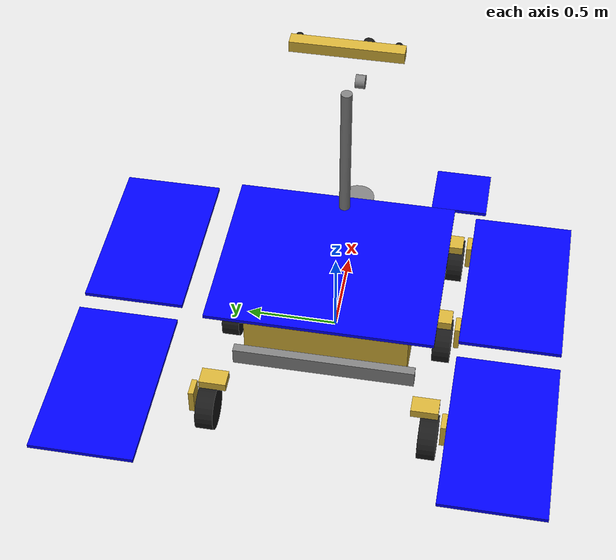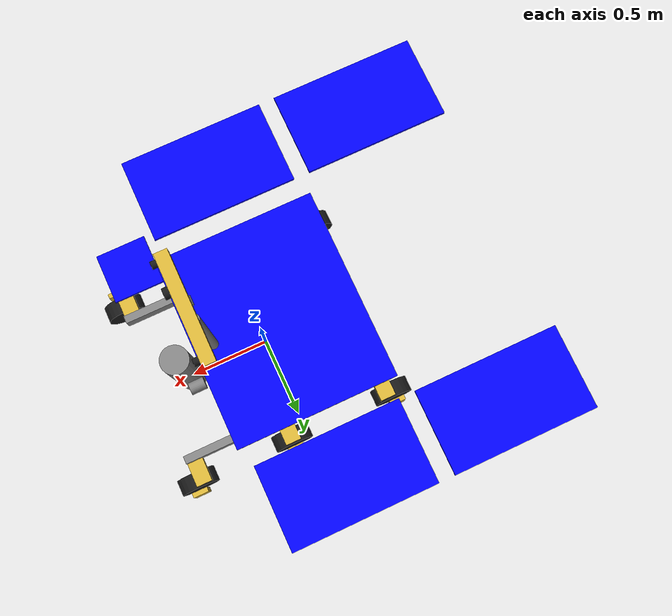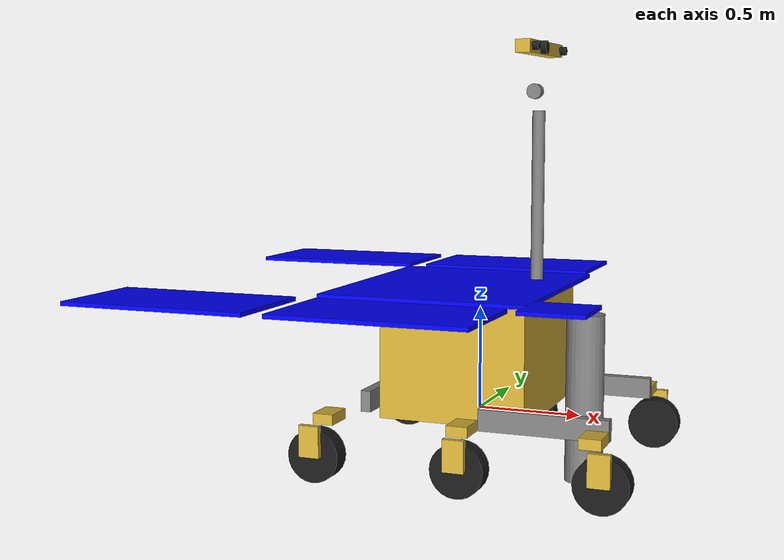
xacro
<?xml version="1.0"?>
<robot name="exomars" xmlns:xacro="http://www.ros.org/wiki/xacro">
  <!-- Constants for robot parameters -->
  <xacro:property name="base_mass" value="10.0" />
  <xacro:property name="mass" value="1.0" />
  <!-- Damping and friction for all joints -->
  <xacro:property name="damping" value="0.1" />
  <xacro:property name="friction" value="0.1" />

  <!-- Import all Gazebo-customization elements, including Gazebo colors and plugins -->
  <xacro:include filename="$(find exomars_description)/urdf/exomars.gazebo" />
  <!-- Import Rviz colors -->
  <xacro:include filename="$(find exomars_description)/urdf/materials.xacro" />

  <!-- Main body -->
  <link name="base_link">
    <collision>
      <origin xyz="0 0 0.3" rpy="0 0 0"/>
      <geometry>
        <box size="0.7 0.9 0.57"/>
      </geometry>
    </collision>
    <inertial>
       <mass value="${base_mass}"/>
        <inertia
            ixx="${base_mass / 12.0 * (0.9 * 0.9 + 0.57 * 0.57)}"
            iyy="${base_mass / 12.0 * (0.7 * 0.7 + 0.57 * 0.57)}"
            izz="${base_mass / 12.0 * (0.7 *0.7 + 0.9 * 0.9)}"
            ixy="0"
            ixz="0"
            iyz="0"/>
    </inertial>
    <visual>
      <origin xyz="0 0 0.3" rpy="0 0 0"/>
      <geometry>
        <box size="0.7 0.9 0.57"/>
      </geometry>
      <material name="gold"/>
    </visual>
  </link>

  <!-- Import subsystem xacro files -->
  <xacro:include filename="$(find exomars_description)/urdf/exomars_locomotion.xacro" />
  <xacro:include filename="$(find exomars_description)/urdf/exomars_power.xacro" />
  <xacro:include filename="$(find exomars_description)/urdf/exomars_sensor.xacro" />
  <xacro:include filename="$(find exomars_description)/urdf/exomars_drill.xacro" />
</robot>

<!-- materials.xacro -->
<robot>
  <!-- Colors used by Rviz -->
  <material name="wheel">
    <color rgba="0.1 0.1 0.1 1.0"/>
  </material>

  <material name="camera">
    <color rgba="0.1 0.1 0.1 1.0"/>
  </material>

  <material name="grey">
    <color rgba="0.5 0.5 0.5 1.0"/>
  </material>

  <material name="gold">
    <color rgba="${212/255} ${175/255} ${55/255} 1.0"/>
  </material>

  <material name="blue">
    <color rgba="0.0 0.0 1.0 1.0"/>
  </material>
</robot>

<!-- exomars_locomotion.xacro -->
<robot xmlns:xacro="http://www.ros.org/wiki/xacro">
  <xacro:property name="limit_drive_effort" value="1000" />
  <xacro:property name="limit_drive_velocity" value="1" />
  <xacro:property name="limit_bogie_effort" value="1000" />
  <xacro:property name="limit_bogie_lower" value="${-pi / 2}" />
  <xacro:property name="limit_bogie_upper" value="${pi / 2}" />
  <xacro:property name="limit_bogie_velocity" value="1" />
  <xacro:property name="limit_ww_effort" value="10000" />
  <xacro:property name="limit_ww_lower" value="0" />
  <xacro:property name="limit_ww_upper" value="${pi}" />
  <xacro:property name="limit_ww_velocity" value="1" />
  <xacro:property name="limit_steer_effort" value="1000" />
  <xacro:property name="limit_steer_lower" value="${-pi / 2}" />
  <xacro:property name="limit_steer_upper" value="${pi / 2}" />
  <xacro:property name="limit_steer_velocity" value="1" />

  <joint name="joint_bogie_back" type="revolute">
    <parent link="base_link"/>
    <child link="bogie_arm_back"/>
    <limit effort="${limit_bogie_effort}" lower="${limit_bogie_lower}" upper="${limit_bogie_upper}" velocity="${limit_bogie_velocity}"/>
    <origin xyz="-0.4 0 0.1" rpy="0 0 0"/>
    <axis xyz="1 0 0"/>
    <dynamics damping="${damping}" friction="${friction}"/>
  </joint>

  <link name="bogie_arm_back">
    <collision>
      <origin xyz="0 0 0" rpy="0 0 0"/>
      <geometry>
        <box size="0.05 1 0.1"/>
      </geometry>
    </collision>
    <inertial>
        <mass value="${mass}"/>
        <inertia
            ixx="${mass / 12.0 * (1 * 1 + 0.1 * 0.1)}"
            iyy="${mass / 12.0 * (0.05 * 0.05 + 0.1 * 0.1)}"
            izz="${mass / 12.0 * (0.05 * 0.05 + 1 * 1)}"
            ixy="0"
            ixz="0"
            iyz="0"/>
    </inertial>
    <visual>
      <origin xyz="0 0 0" rpy="0 0 0"/>
      <geometry>
        <box size="0.05 1 0.1"/>
      </geometry>
      <material name="grey"/>
    </visual>
  </link>

  <joint name="joint_ww_back_left" type="revolute">
    <parent link="bogie_arm_back"/>
    <child link="wrist_back_left"/>
    <limit effort="${limit_ww_effort}" lower="${limit_ww_lower}" upper="${limit_ww_upper}" velocity="${limit_ww_velocity}"/>
    <origin xyz="-0.15 0.48 -0.04" rpy="0 0 0"/>
    <axis xyz="0 -1 0"/>
    <dynamics damping="${damping}" friction="${friction}"/>
  </joint>

  <link name="wrist_back_left">
    <collision>
      <origin xyz="0 0.1 -0.025" rpy="0 0 0"/>
      <geometry>
        <box size="0.1 0.15 0.05"/>
      </geometry>
    </collision>
    <inertial>
        <mass value="${mass}"/>
        <inertia
            ixx="${mass / 12.0 * (0.15 * 0.15 + 0.05 * 0.05)}"
            iyy="${mass / 12.0 * (0.1 * 0.1 + 0.05 * 0.05)}"
            izz="${mass / 12.0 * (0.1 * 0.1 + 0.15 * 0.15)}"
            ixy="0"
            ixz="0"
            iyz="0"/>
    </inertial>
    <visual>
      <origin xyz="0 0.1 -0.025" rpy="0 0 0"/>
      <geometry>
        <box size="0.1 0.15 0.05"/>
      </geometry>
      <material name="gold"/>
    </visual>
  </link>

  <joint name="joint_steer_back_left" type="revolute">
    <parent link="wrist_back_left"/>
    <child link="finger_back_left"/>
    <limit effort="${limit_steer_effort}" lower="${limit_steer_lower}" upper="${limit_steer_upper}" velocity="${limit_steer_velocity}"/>
    <origin xyz="-0.05 0.13 -0.025" rpy="0 0 0"/>
    <axis xyz="0 0 1"/>
    <dynamics damping="${damping}" friction="${friction}"/>
  </joint>

  <link name="finger_back_left">
    <collision>
      <origin xyz="0 0.08 -0.1" rpy="0 0 0"/>
      <geometry>
        <box size="0.1 0.03 0.15"/>
      </geometry>
    </collision>
    <inertial>
        <mass value="${mass}"/>
        <inertia
            ixx="${mass / 12.0 * (0.03 * 0.03 + 0.15 * 0.15)}"
            iyy="${mass / 12.0 * (0.1 * 0.1 + 0.15 * 0.15)}"
            izz="${mass / 12.0 * (0.1 * 0.1 + 0.03 * 0.03)}"
            ixy="0"
            ixz="0"
            iyz="0"/>
    </inertial>
    <visual>
      <origin xyz="0 0.08 -0.1" rpy="0 0 0"/>
      <geometry>
        <box size="0.1 0.03 0.15"/>
      </geometry>
      <material name="gold"/>
    </visual>
  </link>

  <joint name="joint_drive_back_left" type="continuous">
    <parent link="finger_back_left"/>
    <child link="wheel_back_left"/>
    <limit effort="${limit_drive_effort}" velocity="${limit_drive_velocity}"/>
    <origin xyz="0 0 -0.18" rpy="0 0 0"/>
    <axis xyz="0 1 0"/>
    <dynamics damping="${damping}" friction="${friction}"/>
  </joint>
  <link name="wheel_back_left">
    <collision>
      <origin xyz="0 0 0" rpy="1.57 0 0"/>
      <geometry>
        <cylinder length="0.1" radius="0.125"/>
      </geometry>
    </collision>
    <inertial>
        <mass value="${mass}"/>
        <inertia
            ixx="${mass / 12.0 * (3 * 0.125 * 0.125 + 0.1 * 0.1)}"
            iyy="${mass / 12.0 * (3 * 0.125 * 0.125 + 0.1 * 0.1)}"
            izz="${mass / 2.0 * 0.125 * 0.125}"
            ixy="0"
            ixz="0"
            iyz="0"/>
    </inertial>
    <visual>
      <origin xyz="0 0 0" rpy="1.57 0 0"/>
      <geometry>
        <cylinder length="0.1" radius="0.125"/>
      </geometry>
      <material name="wheel"/>
    </visual>
  </link>

  <joint name="joint_ww_back_right" type="revolute">
    <parent link="bogie_arm_back"/>
    <child link="wrist_back_right"/>
    <limit effort="${limit_ww_effort}" lower="${limit_ww_lower}" upper="${limit_ww_upper}" velocity="${limit_ww_velocity}"/>
    <origin xyz="-0.15 -0.48 -0.04" rpy="0 0 0"/>
    <axis xyz="0 -1 0"/>
    <dynamics damping="${damping}" friction="${friction}"/>
  </joint>

  <link name="wrist_back_right">
    <collision>
      <origin xyz="0 -0.1 -0.025" rpy="0 0 0"/>
      <geometry>
        <box size="0.1 0.15 0.05"/>
      </geometry>
    </collision>
    <inertial>
        <mass value="${mass}"/>
        <inertia
            ixx="${mass / 12.0 * (3 * 0.125 * 0.125 + 0.1 * 0.1)}"
            iyy="${mass / 12.0 * (3 * 0.125 * 0.125 + 0.1 * 0.1)}"
            izz="${mass / 2.0 * 0.125 * 0.125}"
            ixy="0"
            ixz="0"
            iyz="0"/>
    </inertial>
    <visual>
      <origin xyz="0 -0.1 -0.025" rpy="0 0 0"/>
      <geometry>
        <box size="0.1 0.15 0.05"/>
      </geometry>
      <material name="gold"/>
    </visual>
  </link>

  <joint name="joint_steer_back_right" type="revolute">
    <parent link="wrist_back_right"/>
    <child link="finger_back_right"/>
    <limit effort="${limit_steer_effort}" lower="${limit_steer_lower}" upper="${limit_steer_upper}" velocity="${limit_steer_velocity}"/>
    <origin xyz="-0.05 -0.13 -0.025" rpy="0 0 0"/>
    <axis xyz="0 0 1"/>
    <dynamics damping="${damping}" friction="${friction}"/>
  </joint>

  <link name="finger_back_right">
    <collision>
      <origin xyz="0 -0.08 -0.1" rpy="0 0 0"/>
      <geometry>
        <box size="0.1 0.03 0.15"/>
      </geometry>
    </collision>
    <inertial>
        <mass value="${mass}"/>
        <inertia
            ixx="${mass / 12.0 * (0.03 * 0.03 + 0.15 * 0.15)}"
            iyy="${mass / 12.0 * (0.1 * 0.1 + 0.15 * 0.15)}"
            izz="${mass / 12.0 * (0.1 * 0.1 + 0.03 * 0.03)}"
            ixy="0"
            ixz="0"
            iyz="0"/>
    </inertial>
    <visual>
      <origin xyz="0 -0.08 -0.1" rpy="0 0 0"/>
      <geometry>
        <box size="0.1 0.03 0.15"/>
      </geometry>
      <material name="gold"/>
    </visual>
  </link>

  <joint name="joint_drive_back_right" type="continuous">
    <parent link="finger_back_right"/>
    <child link="wheel_back_right"/>
    <limit effort="${limit_drive_effort}" velocity="${limit_drive_velocity}"/>
    <origin xyz="0 0 -0.18" rpy="0 0 0"/>
    <axis xyz="0 1 0"/>
    <dynamics damping="${damping}" friction="${friction}"/>
  </joint>
  <link name="wheel_back_right">
    <collision>
      <origin xyz="0 0 0" rpy="1.57 0 0"/>
      <geometry>
        <cylinder length="0.1" radius="0.125"/>
      </geometry>
    </collision>
    <inertial>
        <mass value="${mass}"/>
        <inertia
            ixx="${mass / 12.0 * (3 * 0.125 * 0.125 + 0.1 * 0.1)}"
            iyy="${mass / 12.0 * (3 * 0.125 * 0.125 + 0.1 * 0.1)}"
            izz="${mass / 2.0 * 0.125 * 0.125}"
            ixy="0"
            ixz="0"
            iyz="0"/>
    </inertial>
    <visual>
      <origin xyz="0 0 0" rpy="1.57 0 0"/>
      <geometry>
        <cylinder length="0.1" radius="0.125"/>
      </geometry>
      <material name="wheel"/>
    </visual>
  </link>

  <joint name="joint_bogie_left" type="revolute">
    <parent link="base_link"/>
    <child link="bogie_arm_left"/>
    <limit effort="${limit_bogie_effort}" lower="${limit_bogie_lower}" upper="${limit_bogie_upper}" velocity="${limit_bogie_velocity}"/>
    <origin xyz="0.4 0.48 0.06" rpy="0 0 0"/>
    <axis xyz="0 1 0"/>
    <dynamics damping="${damping}" friction="${friction}"/>
  </joint>

  <link name="bogie_arm_left">
    <collision>
      <origin xyz="0.05 0 0" rpy="0 0 0"/>
      <geometry>
        <box size="0.6 0.05 0.1"/>
      </geometry>
    </collision>
    <inertial>
        <mass value="${mass}"/>
        <inertia
            ixx="${mass / 12.0 * (0.05 * 0.05 + 0.1 * 0.1)}"
            iyy="${mass / 12.0 * (0.6 * 0.6 + 0.1 * 0.1)}"
            izz="${mass / 12.0 * (0.05 * 0.05 + 0.6 * 0.6)}"
            ixy="0"
            ixz="0"
            iyz="0"/>
    </inertial>
    <visual>
      <origin xyz="0.05 0 0" rpy="0 0 0"/>
      <geometry>
        <box size="0.6 0.05 0.1"/>
      </geometry>
      <material name="grey"/>
    </visual>
  </link>

  <joint name="joint_ww_center_left" type="revolute">
    <parent link="bogie_arm_left"/>
    <child link="wrist_center_left"/>
    <limit effort="${limit_ww_effort}" lower="${limit_ww_lower}" upper="${limit_ww_upper}" velocity="${limit_ww_velocity}"/>
    <origin xyz="-0.2 0 0" rpy="0 0 0"/>
    <axis xyz="0 1 0"/>
    <dynamics damping="${damping}" friction="${friction}"/>
  </joint>

  <link name="wrist_center_left">
    <collision>
      <origin xyz="-0.1 0.1 -0.025" rpy="0 0 0"/>
      <geometry>
        <box size="0.1 0.15 0.05"/>
      </geometry>
    </collision>
    <inertial>
        <mass value="${mass}"/>
        <inertia
            ixx="${mass / 12.0 * (0.15 * 0.15 + 0.05 * 0.05)}"
            iyy="${mass / 12.0 * (0.1 * 0.1 + 0.05 * 0.05)}"
            izz="${mass / 12.0 * (0.1 * 0.1 + 0.15 * 0.15)}"
            ixy="0"
            ixz="0"
            iyz="0"/>
    </inertial>
    <visual>
      <origin xyz="-0.1 0.1 -0.025" rpy="0 0 0"/>
      <geometry>
        <box size="0.1 0.15 0.05"/>
      </geometry>
      <material name="gold"/>
    </visual>
  </link>

  <joint name="joint_steer_center_left" type="revolute">
    <parent link="wrist_center_left"/>
    <child link="finger_center_left"/>
    <limit effort="${limit_steer_effort}" lower="${limit_steer_lower}" upper="${limit_steer_upper}" velocity="${limit_steer_velocity}"/>
    <origin xyz="-0.1 0.13 -0.025" rpy="0 0 0"/>
    <axis xyz="0 0 1"/>
    <dynamics damping="${damping}" friction="${friction}"/>
  </joint>

  <link name="finger_center_left">
    <collision>
      <origin xyz="0 0.08 -0.1" rpy="0 0 0"/>
      <geometry>
        <box size="0.1 0.03 0.15"/>
      </geometry>
    </collision>
    <inertial>
        <mass value="${mass}"/>
        <inertia
            ixx="${mass / 12.0 * (0.03 * 0.03 + 0.15 * 0.15)}"
            iyy="${mass / 12.0 * (0.1 * 0.1 + 0.15 * 0.15)}"
            izz="${mass / 12.0 * (0.1 * 0.1 + 0.03 * 0.03)}"
            ixy="0"
            ixz="0"
            iyz="0"/>
    </inertial>
    <visual>
      <origin xyz="0 0.08 -0.1" rpy="0 0 0"/>
      <geometry>
        <box size="0.1 0.03 0.15"/>
      </geometry>
      <material name="gold"/>
    </visual>
  </link>

  <joint name="joint_drive_center_left" type="continuous">
    <parent link="finger_center_left"/>
    <child link="wheel_center_left"/>
    <limit effort="${limit_drive_effort}" velocity="${limit_drive_velocity}"/>
    <origin xyz="0 0 -0.18" rpy="0 0 0"/>
    <axis xyz="0 1 0"/>
    <dynamics damping="${damping}" friction="${friction}"/>
  </joint>

  <link name="wheel_center_left">
    <collision>
      <origin xyz="0 0 0" rpy="1.57 0 0"/>
      <geometry>
        <cylinder length="0.1" radius="0.125"/>
      </geometry>
    </collision>
    <inertial>
        <mass value="${mass}"/>
        <inertia
            ixx="${mass / 12.0 * (3 * 0.125 * 0.125 + 0.1 * 0.1)}"
            iyy="${mass / 12.0 * (3 * 0.125 * 0.125 + 0.1 * 0.1)}"
            izz="${mass / 2.0 * 0.125 * 0.125}"
            ixy="0"
            ixz="0"
            iyz="0"/>
    </inertial>
    <visual>
      <origin xyz="0 0 0" rpy="1.57 0 0"/>
      <geometry>
        <cylinder length="0.1" radius="0.125"/>
      </geometry>
      <material name="wheel"/>
    </visual>
  </link>

  <joint name="joint_ww_front_left" type="revolute">
    <parent link="bogie_arm_left"/>
    <child link="wrist_front_left"/>
    <limit effort="${limit_ww_effort}" lower="${limit_ww_lower}" upper="${limit_ww_upper}" velocity="${limit_ww_velocity}"/>
    <origin xyz="0.3 0 0" rpy="0 0 0"/>
    <axis xyz="0 1 0"/>
    <dynamics damping="${damping}" friction="${friction}"/>
  </joint>

  <link name="wrist_front_left">
    <collision>
      <origin xyz="0 0.1 -0.025" rpy="0 0 0"/>
      <geometry>
        <box size="0.1 0.15 0.05"/>
      </geometry>
    </collision>
    <inertial>
        <mass value="${mass}"/>
        <inertia
            ixx="${mass / 12.0 * (0.15 * 0.15 + 0.05 * 0.05)}"
            iyy="${mass / 12.0 * (0.1 * 0.1 + 0.05 * 0.05)}"
            izz="${mass / 12.0 * (0.1 * 0.1 + 0.15 * 0.15)}"
            ixy="0"
            ixz="0"
            iyz="0"/>
    </inertial>
    <visual>
      <origin xyz="0 0.1 -0.025" rpy="0 0 0"/>
      <geometry>
        <box size="0.1 0.15 0.05"/>
      </geometry>
      <material name="gold"/>
    </visual>
  </link>

  <joint name="joint_steer_front_left" type="revolute">
    <parent link="wrist_front_left"/>
    <child link="finger_front_left"/>
    <limit effort="${limit_steer_effort}" lower="${limit_steer_lower}" upper="${limit_steer_upper}" velocity="${limit_steer_velocity}"/>
    <origin xyz="0.05 0.13 -0.025" rpy="0 0 0"/>
    <axis xyz="0 0 1"/>
    <dynamics damping="${damping}" friction="${friction}"/>
  </joint>

  <link name="finger_front_left">
    <collision>
      <origin xyz="0 0.08 -0.1" rpy="0 0 0"/>
      <geometry>
        <box size="0.1 0.03 0.15"/>
      </geometry>
    </collision>
    <inertial>
        <mass value="${mass}"/>
        <inertia
            ixx="${mass / 12.0 * (0.03 * 0.03 + 0.15 * 0.15)}"
            iyy="${mass / 12.0 * (0.1 * 0.1 + 0.15 * 0.15)}"
            izz="${mass / 12.0 * (0.1 * 0.1 + 0.03 * 0.03)}"
            ixy="0"
            ixz="0"
            iyz="0"/>
    </inertial>
    <visual>
      <origin xyz="0 0.08 -0.1" rpy="0 0 0"/>
      <geometry>
        <box size="0.1 0.03 0.15"/>
      </geometry>
      <material name="gold"/>
    </visual>
  </link>

  <joint name="joint_drive_front_left" type="continuous">
    <parent link="finger_front_left"/>
    <child link="wheel_front_left"/>
    <limit effort="${limit_drive_effort}" velocity="${limit_drive_velocity}"/>
    <origin xyz="0 0 -0.18" rpy="0 0 0"/>
    <axis xyz="0 1 0"/>
    <dynamics damping="${damping}" friction="${friction}"/>
  </joint>
  <link name="wheel_front_left">
    <collision>
      <origin xyz="0 0 0" rpy="1.57 0 0"/>
      <geometry>
        <cylinder length="0.1" radius="0.125"/>
      </geometry>
    </collision>
    <inertial>
        <mass value="${mass}"/>
        <inertia
            ixx="${mass / 12.0 * (3 * 0.125 * 0.125 + 0.1 * 0.1)}"
            iyy="${mass / 12.0 * (3 * 0.125 * 0.125 + 0.1 * 0.1)}"
            izz="${mass / 2.0 * 0.125 * 0.125}"
            ixy="0"
            ixz="0"
            iyz="0"/>
    </inertial>
    <visual>
      <origin xyz="0 0 0" rpy="1.57 0 0"/>
      <geometry>
        <cylinder length="0.1" radius="0.125"/>
      </geometry>
      <material name="wheel"/>
    </visual>
  </link>

  <joint name="joint_bogie_right" type="revolute">
    <parent link="base_link"/>
    <child link="bogie_arm_right"/>
    <limit effort="1000.0" lower="${pi*(-1)}" upper="${pi}" velocity="1"/>
    <origin xyz="0.4 -0.48 0.06" rpy="0 0 0"/>
    <axis xyz="0 1 0"/>
    <dynamics damping="${damping}" friction="${friction}"/>
  </joint>

  <link name="bogie_arm_right">
    <collision>
      <origin xyz="0.05 0 0" rpy="0 0 0"/>
      <geometry>
        <box size="0.6 0.05 0.1"/>
      </geometry>
    </collision>
    <inertial>
        <mass value="${mass}"/>
        <inertia
            ixx="${mass / 12.0 * (0.05 * 0.05 + 0.1 * 0.1)}"
            iyy="${mass / 12.0 * (0.6 * 0.6 + 0.1 * 0.1)}"
            izz="${mass / 12.0 * (0.05 * 0.05 + 0.6 * 0.6)}"
            ixy="0"
            ixz="0"
            iyz="0"/>
    </inertial>
    <visual>
      <origin xyz="0.05 0 0" rpy="0 0 0"/>
      <geometry>
        <box size="0.6 0.05 0.1"/>
      </geometry>
      <material name="grey"/>
    </visual>
  </link>

  <joint name="joint_ww_center_right" type="revolute">
    <parent link="bogie_arm_right"/>
    <child link="wrist_center_right"/>
    <limit effort="${limit_ww_effort}" lower="${limit_ww_lower}" upper="${limit_ww_upper}" velocity="${limit_ww_velocity}"/>
    <origin xyz="-0.2 0 0" rpy="0 0 0"/>
    <axis xyz="0 1 0"/>
    <dynamics damping="${damping}" friction="${friction}"/>
  </joint>

  <link name="wrist_center_right">
    <collision>
      <origin xyz="-0.1 -0.1 -0.025" rpy="0 0 0"/>
      <geometry>
        <box size="0.1 0.15 0.05"/>
      </geometry>
    </collision>
    <inertial>
        <mass value="${mass}"/>
        <inertia
            ixx="${mass / 12.0 * (0.15 * 0.15 + 0.05 * 0.05)}"
            iyy="${mass / 12.0 * (0.1 * 0.1 + 0.05 * 0.05)}"
            izz="${mass / 12.0 * (0.1 * 0.1 + 0.15 * 0.15)}"
            ixy="0"
            ixz="0"
            iyz="0"/>
    </inertial>
    <visual>
      <origin xyz="-0.1 -0.1 -0.025" rpy="0 0 0"/>
      <geometry>
        <box size="0.1 0.15 0.05"/>
      </geometry>
      <material name="gold"/>
    </visual>
  </link>

  <joint name="joint_steer_center_right" type="revolute">
    <parent link="wrist_center_right"/>
    <child link="finger_center_right"/>
    <limit effort="${limit_steer_effort}" lower="${limit_steer_lower}" upper="${limit_steer_upper}" velocity="${limit_steer_velocity}"/>
    <origin xyz="-0.1 -0.13 -0.025" rpy="0 0 0"/>
    <axis xyz="0 0 1"/>
    <dynamics damping="${damping}" friction="${friction}"/>
  </joint>

  <link name="finger_center_right">
    <collision>
      <origin xyz="0 -0.08 -0.1" rpy="0 0 0"/>
      <geometry>
        <box size="0.1 0.03 0.15"/>
      </geometry>
    </collision>
    <inertial>
        <mass value="${mass}"/>
        <inertia
            ixx="${mass / 12.0 * (0.03 * 0.03 + 0.15 * 0.15)}"
            iyy="${mass / 12.0 * (0.1 * 0.1 + 0.15 * 0.15)}"
            izz="${mass / 12.0 * (0.1 * 0.1 + 0.03 * 0.03)}"
            ixy="0"
            ixz="0"
            iyz="0"/>
    </inertial>
    <visual>
      <origin xyz="0 -0.08 -0.1" rpy="0 0 0"/>
      <geometry>
        <box size="0.1 0.03 0.15"/>
      </geometry>
      <material name="gold"/>
    </visual>
  </link>

  <joint name="joint_drive_center_right" type="continuous">
    <parent link="finger_center_right"/>
    <child link="wheel_center_right"/>
    <limit effort="${limit_drive_effort}" velocity="${limit_drive_velocity}"/>
    <origin xyz="0 0 -0.18" rpy="0 0 0"/>
    <axis xyz="0 1 0"/>
    <dynamics damping="${damping}" friction="${friction}"/>
  </joint>
  <link name="wheel_center_right">
    <collision>
      <origin xyz="0 0 0" rpy="1.57 0 0"/>
      <geometry>
        <cylinder length="0.1" radius="0.125"/>
      </geometry>
    </collision>
    <inertial>
        <mass value="${mass}"/>
        <inertia
            ixx="${mass / 12.0 * (3 * 0.125 * 0.125 + 0.1 * 0.1)}"
            iyy="${mass / 12.0 * (3 * 0.125 * 0.125 + 0.1 * 0.1)}"
            izz="${mass / 2.0 * 0.125 * 0.125}"
            ixy="0"
            ixz="0"
            iyz="0"/>
    </inertial>
    <visual>
      <origin xyz="0 0 0" rpy="1.57 0 0"/>
      <geometry>
        <cylinder length="0.1" radius="0.125"/>
      </geometry>
      <material name="wheel"/>
    </visual>
  </link>

  <joint name="joint_ww_front_right" type="revolute">
    <parent link="bogie_arm_right"/>
    <child link="wrist_front_right"/>
    <limit effort="${limit_ww_effort}" lower="${limit_ww_lower}" upper="${limit_ww_upper}" velocity="${limit_ww_velocity}"/>
    <origin xyz="0.3 0 0" rpy="0 0 0"/>
    <axis xyz="0 1 0"/>
    <dynamics damping="${damping}" friction="${friction}"/>
  </joint>

  <link name="wrist_front_right">
    <collision>
      <origin xyz="0 -0.1 -0.025" rpy="0 0 0"/>
      <geometry>
        <box size="0.1 0.15 0.05"/>
      </geometry>
    </collision>
    <inertial>
        <mass value="${mass}"/>
        <inertia
            ixx="${mass / 12.0 * (0.15 * 0.15 + 0.05 * 0.05)}"
            iyy="${mass / 12.0 * (0.1 * 0.1 + 0.05 * 0.05)}"
            izz="${mass / 12.0 * (0.1 * 0.1 + 0.15 * 0.15)}"
            ixy="0"
            ixz="0"
            iyz="0"/>
    </inertial>
    <visual>
      <origin xyz="0 -0.1 -0.025" rpy="0 0 0"/>
      <geometry>
        <box size="0.1 0.15 0.05"/>
      </geometry>
      <material name="gold"/>
    </visual>
  </link>

  <joint name="joint_steer_front_right" type="revolute">
    <parent link="wrist_front_right"/>
    <child link="finger_front_right"/>
    <limit effort="${limit_steer_effort}" lower="${limit_steer_lower}" upper="${limit_steer_upper}" velocity="${limit_steer_velocity}"/>
    <origin xyz="0.05 -0.13 -0.025" rpy="0 0 0"/>
    <axis xyz="0 0 1"/>
    <dynamics damping="${damping}" friction="${friction}"/>
  </joint>

  <link name="finger_front_right">
    <collision>
      <origin xyz="0 -0.08 -0.1" rpy="0 0 0"/>
      <geometry>
        <box size="0.1 0.03 0.15"/>
      </geometry>
    </collision>
    <inertial>
        <mass value="${mass}"/>
        <inertia
            ixx="${mass / 12.0 * (0.03 * 0.03 + 0.15 * 0.15)}"
            iyy="${mass / 12.0 * (0.1 * 0.1 + 0.15 * 0.15)}"
            izz="${mass / 12.0 * (0.1 * 0.1 + 0.03 * 0.03)}"
            ixy="0"
            ixz="0"
            iyz="0"/>
    </inertial>
    <visual>
      <origin xyz="0 -0.08 -0.1" rpy="0 0 0"/>
      <geometry>
        <box size="0.1 0.03 0.15"/>
      </geometry>
      <material name="gold"/>
    </visual>
  </link>

  <joint name="joint_drive_front_right" type="continuous">
    <parent link="finger_front_right"/>
    <child link="wheel_front_right"/>
    <limit effort="${limit_drive_effort}" velocity="${limit_drive_velocity}"/>
    <origin xyz="0 0 -0.18" rpy="0 0 0"/>
    <axis xyz="0 1 0"/>
    <dynamics damping="${damping}" friction="${friction}"/>
  </joint>

  <link name="wheel_front_right">
    <collision>
      <origin xyz="0 0 0" rpy="1.57 0 0"/>
      <geometry>
        <cylinder length="0.1" radius="0.125"/>
      </geometry>
    </collision>
    <inertial>
        <mass value="${mass}"/>
        <inertia
            ixx="${mass / 12.0 * (3 * 0.125 * 0.125 + 0.1 * 0.1)}"
            iyy="${mass / 12.0 * (3 * 0.125 * 0.125 + 0.1 * 0.1)}"
            izz="${mass / 2.0 * 0.125 * 0.125}"
            ixy="0"
            ixz="0"
            iyz="0"/>
    </inertial>
    <visual>
      <origin xyz="0 0 0" rpy="1.57 0 0"/>
      <geometry>
        <cylinder length="0.1" radius="0.125"/>
      </geometry>
      <material name="wheel"/>
    </visual>
  </link>
  <transmission name="transmission_bogie_right">
    <type>transmission_interface/SimpleTransmission</type>
    <joint name="joint_bogie_right">
      <hardwareInterface>hardware_interface/EffortJointInterface</hardwareInterface>
    </joint>
    <actuator name="motor_bogie_right">
      <mechanicalReduction>1</mechanicalReduction>
    </actuator>
  </transmission>

  <transmission name="transmission_bogie_left">
    <type>transmission_interface/SimpleTransmission</type>
    <joint name="joint_bogie_left">
      <hardwareInterface>hardware_interface/EffortJointInterface</hardwareInterface>
    </joint>
    <actuator name="motor_bogie_left">
      <mechanicalReduction>1</mechanicalReduction>
    </actuator>
  </transmission>

  <transmission name="transmission_bogie_back">
    <type>transmission_interface/SimpleTransmission</type>
    <joint name="joint_bogie_back">
      <hardwareInterface>hardware_interface/EffortJointInterface</hardwareInterface>
    </joint>
    <actuator name="motor_bogie_back">
      <mechanicalReduction>1</mechanicalReduction>
    </actuator>
  </transmission>

  <transmission name="transmission_steer_back_left">
    <type>transmission_interface/SimpleTransmission</type>
    <joint name="joint_steer_back_left">
      <hardwareInterface>hardware_interface/EffortJointInterface</hardwareInterface>
    </joint>
    <actuator name="motor_steer_back_left">
      <mechanicalReduction>1</mechanicalReduction>
    </actuator>
  </transmission>

  <transmission name="transmission_steer_back_right">
    <type>transmission_interface/SimpleTransmission</type>
    <joint name="joint_steer_back_right">
      <hardwareInterface>hardware_interface/EffortJointInterface</hardwareInterface>
    </joint>
    <actuator name="motor_steer_back_right">
      <mechanicalReduction>1</mechanicalReduction>
    </actuator>
  </transmission>

  <transmission name="transmission_steer_center_left">
    <type>transmission_interface/SimpleTransmission</type>
    <joint name="joint_steer_center_left">
      <hardwareInterface>hardware_interface/EffortJointInterface</hardwareInterface>
    </joint>
    <actuator name="motor_steer_center_left">
      <mechanicalReduction>1</mechanicalReduction>
    </actuator>
  </transmission>

  <transmission name="transmission_steer_center_right">
    <type>transmission_interface/SimpleTransmission</type>
    <joint name="joint_steer_center_right">
      <hardwareInterface>hardware_interface/EffortJointInterface</hardwareInterface>
    </joint>
    <actuator name="motor_steer_center_right">
      <mechanicalReduction>1</mechanicalReduction>
    </actuator>
  </transmission>

  <transmission name="transmission_steer_front_left">
    <type>transmission_interface/SimpleTransmission</type>
    <joint name="joint_steer_front_left">
      <hardwareInterface>hardware_interface/EffortJointInterface</hardwareInterface>
    </joint>
    <actuator name="motor_steer_front_left">
      <mechanicalReduction>1</mechanicalReduction>
    </actuator>
  </transmission>

  <transmission name="transmission_steer_front_right">
    <type>transmission_interface/SimpleTransmission</type>
    <joint name="joint_steer_front_right">
      <hardwareInterface>hardware_interface/EffortJointInterface</hardwareInterface>
    </joint>
    <actuator name="motor_steer_front_right">
      <mechanicalReduction>1</mechanicalReduction>
    </actuator>
  </transmission>

  <transmission name="transmission_drive_back_left">
    <type>transmission_interface/SimpleTransmission</type>
    <joint name="joint_drive_back_left">
      <hardwareInterface>hardware_interface/EffortJointInterface</hardwareInterface>
    </joint>
    <actuator name="motor_drive_back_left">
      <mechanicalReduction>1</mechanicalReduction>
    </actuator>
  </transmission>

  <transmission name="transmission_drive_back_right">
    <type>transmission_interface/SimpleTransmission</type>
    <joint name="joint_drive_back_right">
      <hardwareInterface>hardware_interface/EffortJointInterface</hardwareInterface>
    </joint>
    <actuator name="motor_drive_back_right">
      <mechanicalReduction>1</mechanicalReduction>
    </actuator>
  </transmission>

  <transmission name="transmission_drive_center_left">
    <type>transmission_interface/SimpleTransmission</type>
    <joint name="joint_drive_center_left">
      <hardwareInterface>hardware_interface/EffortJointInterface</hardwareInterface>
    </joint>
    <actuator name="motor_drive_center_left">
      <mechanicalReduction>1</mechanicalReduction>
    </actuator>
  </transmission>

  <transmission name="transmission_drive_center_right">
    <type>transmission_interface/SimpleTransmission</type>
    <joint name="joint_drive_center_right">
      <hardwareInterface>hardware_interface/EffortJointInterface</hardwareInterface>
    </joint>
    <actuator name="motor_drive_center_right">
      <mechanicalReduction>1</mechanicalReduction>
    </actuator>
  </transmission>

  <transmission name="transmission_drive_front_left">
    <type>transmission_interface/SimpleTransmission</type>
    <joint name="joint_drive_front_left">
      <hardwareInterface>hardware_interface/EffortJointInterface</hardwareInterface>
    </joint>
    <actuator name="motor_drive_front_left">
      <mechanicalReduction>1</mechanicalReduction>
    </actuator>
  </transmission>

  <transmission name="transmission_drive_front_right">
    <type>transmission_interface/SimpleTransmission</type>
    <joint name="joint_drive_front_right">
      <hardwareInterface>hardware_interface/EffortJointInterface</hardwareInterface>
    </joint>
    <actuator name="motor_drive_front_right">
      <mechanicalReduction>1</mechanicalReduction>
    </actuator>
  </transmission>

  <transmission name="transmission_ww_back_left">
    <type>transmission_interface/SimpleTransmission</type>
    <joint name="joint_ww_back_left">
      <hardwareInterface>hardware_interface/EffortJointInterface</hardwareInterface>
    </joint>
    <actuator name="motor_ww_back_left">
      <mechanicalReduction>1</mechanicalReduction>
    </actuator>
  </transmission>

  <transmission name="transmission_ww_back_right">
    <type>transmission_interface/SimpleTransmission</type>
    <joint name="joint_ww_back_right">
      <hardwareInterface>hardware_interface/EffortJointInterface</hardwareInterface>
    </joint>
    <actuator name="motor_ww_back_right">
      <mechanicalReduction>1</mechanicalReduction>
    </actuator>
  </transmission>

  <transmission name="transmission_ww_center_left">
    <type>transmission_interface/SimpleTransmission</type>
    <joint name="joint_ww_center_left">
      <hardwareInterface>hardware_interface/EffortJointInterface</hardwareInterface>
    </joint>
    <actuator name="motor_ww_center_left">
      <mechanicalReduction>1</mechanicalReduction>
    </actuator>
  </transmission>

  <transmission name="transmission_ww_center_right">
    <type>transmission_interface/SimpleTransmission</type>
    <joint name="joint_ww_center_right">
      <hardwareInterface>hardware_interface/EffortJointInterface</hardwareInterface>
    </joint>
    <actuator name="motor_ww_center_right">
      <mechanicalReduction>1</mechanicalReduction>
    </actuator>
  </transmission>

  <transmission name="transmission_ww_front_left">
    <type>transmission_interface/SimpleTransmission</type>
    <joint name="joint_ww_front_left">
      <hardwareInterface>hardware_interface/EffortJointInterface</hardwareInterface>
    </joint>
    <actuator name="motor_ww_front_left">
      <mechanicalReduction>1</mechanicalReduction>
    </actuator>
  </transmission>

  <transmission name="transmission_ww_front_right">
    <type>transmission_interface/SimpleTransmission</type>
    <joint name="joint_ww_front_right">
      <hardwareInterface>hardware_interface/EffortJointInterface</hardwareInterface>
    </joint>
    <actuator name="motor_ww_front_right">
      <mechanicalReduction>1</mechanicalReduction>
    </actuator>
  </transmission>
</robot>

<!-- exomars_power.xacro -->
<robot>
  <joint name="joint_panel_top" type="fixed">
    <parent link="base_link"/>
    <child link="panel_top"/>
    <origin xyz="-0.1 0 0.6" rpy="0 0 0"/>
  </joint>

  <link name="panel_top">
    <collision>
      <origin xyz="0 0 0" rpy="0 0 0"/>
      <geometry>
        <box size="1 1.2 0.02"/>
      </geometry>
    </collision>
    <inertial>
        <mass value="${mass}"/>
        <inertia
            ixx="${mass / 12.0 * (1.2 * 1.2 + 0.02 * 0.02)}"
            iyy="${mass / 12.0 * (1 * 1 + 0.02 * 0.02)}"
            izz="${mass / 12.0 * (1.2 * 1.2 + 1 * 1)}"
            ixy="0"
            ixz="0"
            iyz="0"/>
    </inertial>
    <visual>
      <origin xyz="0 0 0" rpy="0 0 0"/>
      <geometry>
        <box size="1 1.2 0.02"/>
      </geometry>
      <material name="blue"/>
    </visual>
  </link>

  <joint name="joint_panel_front" type="fixed">
    <parent link="base_link"/>
    <child link="panel_front"/>
    <origin xyz="0.55 -0.62 0.6" rpy="0 0 0"/>
  </joint>

  <link name="panel_front">
    <collision>
      <origin xyz="0 0 0" rpy="0 0 0"/>
      <geometry>
        <box size="0.3 0.3 0.02"/>
      </geometry>
    </collision>
    <inertial>
        <mass value="${mass}"/>
        <inertia
            ixx="${mass / 12.0 * (1.2 * 1.2 + 0.02 * 0.02)}"
            iyy="${mass / 12.0 * (1 * 1 + 0.02 * 0.02)}"
            izz="${mass / 12.0 * (1.2 * 1.2 + 1 * 1)}"
            ixy="0"
            ixz="0"
            iyz="0"/>
    </inertial>
    <visual>
      <origin xyz="0 0 0" rpy="0 0 0"/>
      <geometry>
        <box size="0.3 0.3 0.02"/>
      </geometry>
      <material name="blue"/>
    </visual>
  </link>

  <joint name="joint_panel_center_right" type="revolute">
    <parent link="panel_top"/>
    <child link="panel_center_right"/>
    <limit effort="1000.0" lower="0" upper="${pi}" velocity="0.5"/>
    <origin xyz="0 -0.66 0.015" rpy="0 0 0"/>
    <axis xyz="-1 0 0"/>
    <dynamics damping="${damping}" friction="${friction}"/>
  </joint>

  <link name="panel_center_right">
    <collision>
      <origin xyz="0 -0.32 -0.015" rpy="0 0 0"/>
      <geometry>
        <box size="0.9 0.52 0.02"/>
      </geometry>
    </collision>
    <inertial>
        <mass value="${mass}"/>
        <inertia
            ixx="${mass / 12.0 * (0.52 * 0.52 + 0.02 * 0.02)}"
            iyy="${mass / 12.0 * (0.9 * 0.9 + 0.02 * 0.02)}"
            izz="${mass / 12.0 * (0.9 * 0.9 + 0.52 * 0.52)}"
            ixy="0"
            ixz="0"
            iyz="0"/>
    </inertial>
    <visual>
      <origin xyz="0 -0.32 -0.015" rpy="0 0 0"/>
      <geometry>
        <box size="0.9 0.52 0.02"/>
      </geometry>
      <material name="blue"/>
    </visual>
  </link>

  <joint name="joint_panel_back_right" type="revolute">
    <parent link="panel_center_right"/>
    <child link="panel_back_right"/>
    <limit effort="1000.0" lower="0" upper="${pi}" velocity="0.5"/>
    <origin xyz="-0.5 -0.32 -0.03" rpy="0 0 0"/>
    <axis xyz="0 -1 0"/>
    <dynamics damping="${damping}" friction="${friction}"/>
  </joint>

  <link name="panel_back_right">
    <collision>
      <origin xyz="-0.5 0 0.015" rpy="0 0 0"/>
      <geometry>
        <box size="0.9 0.52 0.02"/>
      </geometry>
    </collision>
    <inertial>
        <mass value="${mass}"/>
        <inertia
            ixx="${mass / 12.0 * (0.52 * 0.52 + 0.02 * 0.02)}"
            iyy="${mass / 12.0 * (0.9 * 0.9 + 0.02 * 0.02)}"
            izz="${mass / 12.0 * (0.9 * 0.9 + 0.52 * 0.52)}"
            ixy="0"
            ixz="0"
            iyz="0"/>
    </inertial>
    <visual>
      <origin xyz="-0.5 0 0.015" rpy="0 0 0"/>
      <geometry>
        <box size="0.9 0.52 0.02"/>
      </geometry>
      <material name="blue"/>
    </visual>
  </link>

  <joint name="joint_panel_center_left" type="revolute">
    <parent link="panel_top"/>
    <child link="panel_center_left"/>
    <limit effort="1000.0" lower="0" upper="${pi}" velocity="0.5"/>
    <origin xyz="0 0.66 0.015" rpy="0 0 0"/>
    <axis xyz="1 0 0"/>
    <dynamics damping="${damping}" friction="${friction}"/>
  </joint>

  <link name="panel_center_left">
    <collision>
      <origin xyz="0 0.32 -0.015" rpy="0 0 0"/>
      <geometry>
        <box size="0.9 0.52 0.02"/>
      </geometry>
    </collision>
    <inertial>
        <mass value="${mass}"/>
        <inertia
            ixx="${mass / 12.0 * (0.52 * 0.52 + 0.02 * 0.02)}"
            iyy="${mass / 12.0 * (0.9 * 0.9 + 0.02 * 0.02)}"
            izz="${mass / 12.0 * (0.9 * 0.9 + 0.52 * 0.52)}"
            ixy="0"
            ixz="0"
            iyz="0"/>
    </inertial>
    <visual>
      <origin xyz="0 0.32 -0.015" rpy="0 0 0"/>
      <geometry>
        <box size="0.9 0.52 0.02"/>
      </geometry>
      <material name="blue"/>
    </visual>
  </link>

  <joint name="joint_panel_back_left" type="revolute">
    <parent link="panel_center_left"/>
    <child link="panel_back_left"/>
    <limit effort="1000.0" lower="0" upper="${pi}" velocity="0.5"/>
    <origin xyz="-0.5 0.32 -0.03" rpy="0 0 0"/>
    <axis xyz="0 -1 0"/>
    <dynamics damping="${damping}" friction="${friction}"/>
  </joint>

  <link name="panel_back_left">
    <collision>
      <origin xyz="-0.5 0 0.015" rpy="0 0 0"/>
      <geometry>
        <box size="0.9 0.52 0.02"/>
      </geometry>
    </collision>
    <inertial>
        <mass value="${mass}"/>
        <inertia
            ixx="${mass / 12.0 * (0.52 * 0.52 + 0.02 * 0.02)}"
            iyy="${mass / 12.0 * (0.9 * 0.9 + 0.02 * 0.02)}"
            izz="${mass / 12.0 * (0.9 * 0.9 + 0.52 * 0.52)}"
            ixy="0"
            ixz="0"
            iyz="0"/>
    </inertial>
    <visual>
      <origin xyz="-0.5 0 0.015" rpy="0 0 0"/>
      <geometry>
        <box size="0.9 0.52 0.02"/>
      </geometry>
      <material name="blue"/>
    </visual>
  </link>

  <transmission name="transmission_panel_center_right">
    <type>transmission_interface/SimpleTransmission</type>
    <joint name="joint_panel_center_right">
      <hardwareInterface>hardware_interface/EffortJointInterface</hardwareInterface>
    </joint>
    <actuator name="motor_panel_center_right">
      <hardwareInterface>hardware_interface/EffortJointInterface</hardwareInterface>
      <mechanicalReduction>1</mechanicalReduction>
    </actuator>
  </transmission>

  <transmission name="transmission_panel_center_left">
    <type>transmission_interface/SimpleTransmission</type>
    <joint name="joint_panel_center_left">
      <hardwareInterface>hardware_interface/EffortJointInterface</hardwareInterface>
    </joint>
    <actuator name="motor_panel_center_left">
      <hardwareInterface>hardware_interface/EffortJointInterface</hardwareInterface>
      <mechanicalReduction>1</mechanicalReduction>
    </actuator>
  </transmission>

  <transmission name="transmission_panel_back_right">
    <type>transmission_interface/SimpleTransmission</type>
    <joint name="joint_panel_back_right">
      <hardwareInterface>hardware_interface/EffortJointInterface</hardwareInterface>
    </joint>
    <actuator name="motor_panel_back_right">
      <hardwareInterface>hardware_interface/EffortJointInterface</hardwareInterface>
      <mechanicalReduction>1</mechanicalReduction>
    </actuator>
  </transmission>

  <transmission name="transmission_panel_back_left">
    <type>transmission_interface/SimpleTransmission</type>
    <joint name="joint_panel_back_left">
      <hardwareInterface>hardware_interface/EffortJointInterface</hardwareInterface>
    </joint>
    <actuator name="motor_panel_back_left">
      <hardwareInterface>hardware_interface/EffortJointInterface</hardwareInterface>
      <mechanicalReduction>1</mechanicalReduction>
    </actuator>
  </transmission>
</robot>

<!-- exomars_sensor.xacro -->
<robot xmlns:xacro="http://www.ros.org/wiki/xacro">
  <xacro:property name="ptu_pan_limit" value="${170 * pi / 180}" />
  <xacro:property name="ptu_tilt_limit_upper" value="${pi / 2}" />
  <xacro:property name="ptu_tilt_limit_lower" value="${-pi / 2}" />

  <joint name="joint_ptu_deploy" type="revolute">
    <parent link="base_link"/>
    <child link="pamcam_mast"/>
    <limit effort="1000.0" lower="0" upper="${pi / 2}" velocity="0.5"/>
    <origin xyz="0.28 0 0.65" rpy="0 0 0"/>
    <axis xyz="0 -1 0"/>
    <dynamics damping="${damping}" friction="${friction}"/>
  </joint>

  <link name="pamcam_mast">
    <collision>
      <origin xyz="0 0 0.4" rpy="0 0 0"/>
      <geometry>
        <cylinder length="0.8" radius="0.03"/>
      </geometry>
    </collision>
    <inertial>
        <mass value="${mass}"/>
        <inertia
            ixx="${mass / 12.0 * (3 * 0.03 * 0.03 + 0.8 * 0.8)}"
            iyy="${mass / 12.0 * (3 * 0.03 * 0.03 + 0.8 * 0.8)}"
            izz="${mass / 2.0 * 0.03 * 0.03}"
            ixy="0"
            ixz="0"
            iyz="0"/>
    </inertial>
    <visual>
      <origin xyz="0 0 0.4" rpy="0 0 0"/>
      <geometry>
        <cylinder length="0.8" radius="0.03"/>
      </geometry>
      <material name="grey"/>
    </visual>
  </link>

  <joint name="joint_ptu_pan" type="revolute">
    <parent link="pamcam_mast"/>
    <child link="mast_tilt"/>
    <limit effort="1000.0" lower="${-ptu_pan_limit}" upper="${ptu_pan_limit}" velocity="0.5"/>
    <origin xyz="0 0 0.8" rpy="0 0 0"/>
    <axis xyz="0 0 1"/>
    <dynamics damping="${damping}" friction="${friction}"/>
  </joint>

  <link name="mast_tilt">
    <collision>
      <origin xyz="0 -0.07 0.09" rpy="0 0 0"/>
      <geometry>
        <cylinder length="0.05" radius="0.035"/>
      </geometry>
    </collision>
    <inertial>
        <mass value="${mass}"/>
        <inertia
            ixx="${mass / 12.0 * (3 * 0.035 * 0.035 + 0.05 * 0.05)}"
            iyy="${mass / 12.0 * (3 * 0.035 * 0.035 + 0.05 * 0.05)}"
            izz="${mass / 2.0 * 0.035 * 0.035}"
            ixy="0"
            ixz="0"
            iyz="0"/>
    </inertial>
    <visual>
      <origin xyz="0 -0.07 0.09" rpy="${pi / 2} 0 0"/>
      <geometry>
        <cylinder length="0.05" radius="0.035"/>
      </geometry>
      <material name="grey"/>
    </visual>
  </link>

  <joint name="joint_ptu_tilt" type="revolute">
    <parent link="mast_tilt"/>
    <child link="pancam_support"/>
    <limit effort="1000.0" lower="${ptu_tilt_limit_lower}" upper="${ptu_tilt_limit_upper}" velocity="0.5"/>
    <origin xyz="0 0 0.09" rpy="0 0 0"/>
    <axis xyz="0 1 0"/>
    <dynamics damping="${damping}" friction="${friction}"/>
  </joint>

  <link name="pancam_support">
    <collision>
      <origin xyz="0 0 0.2" rpy="0 0 0"/>
      <geometry>
        <box size="0.07 0.58 0.06"/>
      </geometry>
    </collision>
    <inertial>
       <mass value="${mass}"/>
        <inertia
            ixx="${mass / 12.0 * (0.58 * 0.58 + 0.06 * 0.06)}"
            iyy="${mass / 12.0 * (0.07 * 0.07 + 0.06 * 0.06)}"
            izz="${mass / 12.0 * (0.07 * 0.07 + 0.58 * 0.58)}"
            ixy="0"
            ixz="0"
            iyz="0"/>
    </inertial>
    <visual>
      <origin xyz="0 0 0.2" rpy="0 0 0"/>
      <geometry>
        <box size="0.07 0.58 0.06"/>
      </geometry>
      <material name="gold"/>
    </visual>
  </link>

  <joint name="camera_joint_left" type="fixed">
    <axis xyz="0 1 0" />
    <origin xyz="${0.035+0.01} 0.25 0.2" rpy="0 0 0"/>
    <parent link="pancam_support"/>
    <child link="pancam_frame_left"/>
  </joint>

  <link name="pancam_frame_left">
    <collision>
      <origin xyz="0 0 0" rpy="0 ${pi / 2} 0"/>
      <geometry>
        <cylinder length="0.04" radius="0.02"/>
      </geometry>
    </collision>
    <inertial>
        <mass value="0.01"/>
        <inertia
            ixx="${0.01 / 12.0 * (3 * 0.02 * 0.02 + 0.04 * 0.04)}"
            iyy="${0.01 / 12.0 * (3 * 0.02 * 0.02 + 0.04 * 0.04)}"
            izz="${0.01 / 2.0 * 0.02 * 0.02}"
            ixy="0"
            ixz="0"
            iyz="0"/>
    </inertial>
    <visual>
      <origin xyz="0 0 0" rpy="0 ${pi / 2} 0"/>
      <geometry>
        <cylinder length="0.04" radius="0.02"/>
      </geometry>
      <material name="camera"/>
    </visual>
  </link>

  <joint name="camera_joint_right" type="fixed">
    <axis xyz="0 1 0" />
    <origin xyz="${0.035+0.01} -0.25 0.2" rpy="0 0 0"/>
    <parent link="pancam_support"/>
    <child link="pancam_frame_right"/>
  </joint>

  <link name="pancam_frame_right">
    <collision>
      <origin xyz="0 0 0" rpy="0 ${pi / 2} 0"/>
      <geometry>
        <cylinder length="0.04" radius="0.02"/>
      </geometry>
    </collision>
    <inertial>
        <mass value="0.01"/>
        <inertia
            ixx="${0.01 / 12.0 * (3 * 0.02 * 0.02 + 0.04 * 0.04)}"
            iyy="${0.01 / 12.0 * (3 * 0.02 * 0.02 + 0.04 * 0.04)}"
            izz="${0.01 / 2.0 * 0.02 * 0.02}"
            ixy="0"
            ixz="0"
            iyz="0"/>
    </inertial>
    <visual>
      <origin xyz="0 0 0" rpy="0 ${pi / 2} 0"/>
      <geometry>
        <cylinder length="0.04" radius="0.02"/>
      </geometry>
      <material name="camera"/>
    </visual>
  </link>

  <joint name="camera_joint_hrc" type="fixed">
    <axis xyz="0 1 0" />
    <origin xyz="${0.035+0.01} -0.1 0.2" rpy="0 0 0"/>
    <parent link="pancam_support"/>
    <child link="pancam_frame_hrc"/>
  </joint>

  <link name="pancam_frame_hrc">
    <collision>
      <origin xyz="0 0 0" rpy="0 ${pi / 2} 0"/>
      <geometry>
        <cylinder length="0.04" radius="0.03"/>
      </geometry>
    </collision>
    <inertial>
        <mass value="0.01"/>
        <inertia
            ixx="${0.01 / 12.0 * (3 * 0.03 * 0.03 + 0.04 * 0.04)}"
            iyy="${0.01 / 12.0 * (3 * 0.03 * 0.03 + 0.04 * 0.04)}"
            izz="${0.01 / 2.0 * 0.03 * 0.03}"
            ixy="0"
            ixz="0"
            iyz="0"/>
    </inertial>
    <visual>
      <origin xyz="0 0 0" rpy="0 ${pi / 2} 0"/>
      <geometry>
        <cylinder length="0.04" radius="0.03"/>
      </geometry>
      <material name="camera"/>
    </visual>
  </link>

  <!-- Reference: https://www.liebertpub.com/doi/10.1089/ast.2016.1548 -->
  <gazebo reference="pancam_frame_left">
    <sensor type="multicamera" name="wide_angle_camera">
      <update_rate>30.0</update_rate>
      <camera name="left">
        <horizontal_fov>${38.3 * pi / 180}</horizontal_fov>
        <image>
          <width>1024</width>
          <height>1024</height>
          <format>R8G8B8</format>
        </image>
        <clip>
          <near>0.02</near>
          <far>300</far>
        </clip>
        <noise>
          <type>gaussian</type>
          <mean>0.0</mean>
          <stddev>0.007</stddev>
        </noise>
      </camera>
      <camera name="right">
        <pose>0 -0.5 0 0 0 0</pose>
        <horizontal_fov>${38.3 * pi / 180}</horizontal_fov>
        <image>
          <width>1024</width>
          <height>1024</height>
          <format>R8G8B8</format>
        </image>
        <clip>
          <near>0.02</near>
          <far>300</far>
        </clip>
        <noise>
          <type>gaussian</type>
          <mean>0.0</mean>
          <stddev>0.007</stddev>
        </noise>
      </camera>
      <plugin name="stereo_camera_controller" filename="libgazebo_ros_multicamera.so">
        <alwaysOn>true</alwaysOn>
        <updateRate>0.0</updateRate>
        <cameraName>wac</cameraName>
        <imageTopicName>image_raw</imageTopicName>
        <cameraInfoTopicName>camera_info</cameraInfoTopicName>
        <frameName>pancam_frame_left</frameName>
        <hackBaseline>0.07</hackBaseline>
        <distortionK1>0.0</distortionK1>
        <distortionK2>0.0</distortionK2>
        <distortionK3>0.0</distortionK3>
        <distortionT1>0.0</distortionT1>
        <distortionT2>0.0</distortionT2>
      </plugin>
    </sensor>
  </gazebo>

  <!-- High Resolution Camera (HRC) -->
  <gazebo reference="pancam_frame_hrc">
    <sensor type="camera" name="high_resolution_camera">
      <update_rate>30.0</update_rate>
      <camera name="head">
        <horizontal_fov>${4.88 * pi / 180}</horizontal_fov>
        <image>
          <width>1024</width>
          <height>1024</height>
          <format>R8G8B8</format>
        </image>
        <clip>
          <near>0.02</near>
          <far>300</far>
        </clip>
        <noise>
          <type>gaussian</type>
          <mean>0.0</mean>
          <stddev>0.007</stddev>
        </noise>
      </camera>
      <plugin name="camera_controller" filename="libgazebo_ros_camera.so">
        <alwaysOn>true</alwaysOn>
        <updateRate>0.0</updateRate>
        <cameraName>hrc</cameraName>
        <imageTopicName>image_raw</imageTopicName>
        <cameraInfoTopicName>camera_info</cameraInfoTopicName>
        <frameName>camera_link</frameName>
        <hackBaseline>0.07</hackBaseline>
        <distortionK1>0.0</distortionK1>
        <distortionK2>0.0</distortionK2>
        <distortionK3>0.0</distortionK3>
        <distortionT1>0.0</distortionT1>
        <distortionT2>0.0</distortionT2>
      </plugin>
    </sensor>
  </gazebo>

  <transmission name="transmission_ptu_deploy">
    <type>transmission_interface/SimpleTransmission</type>
    <joint name="joint_ptu_deploy">
      <hardwareInterface>hardware_interface/EffortJointInterface</hardwareInterface>
    </joint>
    <actuator name="motor_ptu_deploy">
      <mechanicalReduction>1</mechanicalReduction>
    </actuator>
  </transmission>

  <transmission name="transmission_ptu_pan">
    <type>transmission_interface/SimpleTransmission</type>
    <joint name="joint_ptu_pan">
      <hardwareInterface>hardware_interface/EffortJointInterface</hardwareInterface>
    </joint>
    <actuator name="motor_ptu_pan">
      <mechanicalReduction>1</mechanicalReduction>
    </actuator>
  </transmission>

  <transmission name="transmission_ptu_tilt">
    <type>transmission_interface/SimpleTransmission</type>
    <joint name="joint_ptu_tilt">
      <hardwareInterface>hardware_interface/EffortJointInterface</hardwareInterface>
    </joint>
    <actuator name="motor_ptu_tilt">
      <mechanicalReduction>1</mechanicalReduction>
    </actuator>
  </transmission>
</robot>

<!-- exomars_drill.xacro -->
<robot>
  <joint name="joint_drill_translation" type="prismatic">
    <parent link="base_link"/>
    <child link="drill_support"/>
    <limit effort="10000.0" lower="0" upper="0.4" velocity="0.5"/>
    <origin xyz="0.4 0.09 0" rpy="0 0 0"/>
    <axis xyz="0 0 1"/>
    <dynamics damping="${damping}" friction="${friction}"/>
  </joint>

  <link name="drill_support">
    <collision>
      <origin xyz="0.1 0 0.08" rpy="0 ${pi / 2} 0"/>
      <geometry>
        <cylinder length="0.1" radius="0.04"/>
      </geometry>
    </collision>
    <inertial>
        <mass value="${mass}"/>
        <inertia
            ixx="${mass / 12.0 * (3 * 0.04 * 0.04 + 0.1 * 0.1)}"
            iyy="${mass / 12.0 * (3 * 0.04 * 0.04 + 0.1 * 0.1)}"
            izz="${mass / 2.0 * 0.04 * 0.04}"
            ixy="0"
            ixz="0"
            iyz="0"/>
    </inertial>
    <visual>
      <origin xyz="0.1 0 0.08" rpy="0 ${pi / 2} 0"/>
      <geometry>
        <cylinder length="0.1" radius="0.04"/>
      </geometry>
      <material name="grey"/>
    </visual>
  </link>

  <joint name="joint_drill_rotation" type="revolute">
    <parent link="drill_support"/>
    <child link="drill_housing"/>
    <limit effort="10000.0" lower="0" upper="${pi / 2}" velocity="0.5"/>
    <origin xyz="0.18 0 0" rpy="0 0 0"/>
    <axis xyz="1 0 0"/>
    <dynamics damping="${damping}" friction="${friction}"/>
  </joint>

  <link name="drill_housing">
    <collision>
      <origin xyz="-0.048 -0.13 0.1" rpy="0 0 0"/>
      <geometry>
        <cylinder length="0.8" radius="0.09"/>
      </geometry>
    </collision>
    <inertial>
        <mass value="${mass}"/>
        <inertia
            ixx="${mass / 12.0 * (3 * 0.09 * 0.09 + 0.8 * 0.8)}"
            iyy="${mass / 12.0 * (3 * 0.09 * 0.09 + 0.8 * 0.8)}"
            izz="${mass / 2.0 * 0.09 * 0.09}"
            ixy="0"
            ixz="0"
            iyz="0"/>
    </inertial>
    <visual>
      <origin xyz="-0.048 -0.13 0.1" rpy="0 0 0"/>
      <geometry>
        <cylinder length="0.8" radius="0.09"/>
      </geometry>
      <material name="grey"/>
    </visual>
  </link>

  <transmission name="transmission_drill_translation">
    <type>transmission_interface/SimpleTransmission</type>
    <joint name="joint_drill_translation">
      <hardwareInterface>hardware_interface/EffortJointInterface</hardwareInterface>
    </joint>
    <actuator name="motor_drill_translation">
      <mechanicalReduction>1</mechanicalReduction>
    </actuator>
  </transmission>

  <transmission name="transmission_drill_rotation">
    <type>transmission_interface/SimpleTransmission</type>
    <joint name="joint_drill_rotation">
      <hardwareInterface>hardware_interface/EffortJointInterface</hardwareInterface>
    </joint>
    <actuator name="motor_drill_rotation">
      <mechanicalReduction>1</mechanicalReduction>
    </actuator>
  </transmission>
</robot>
